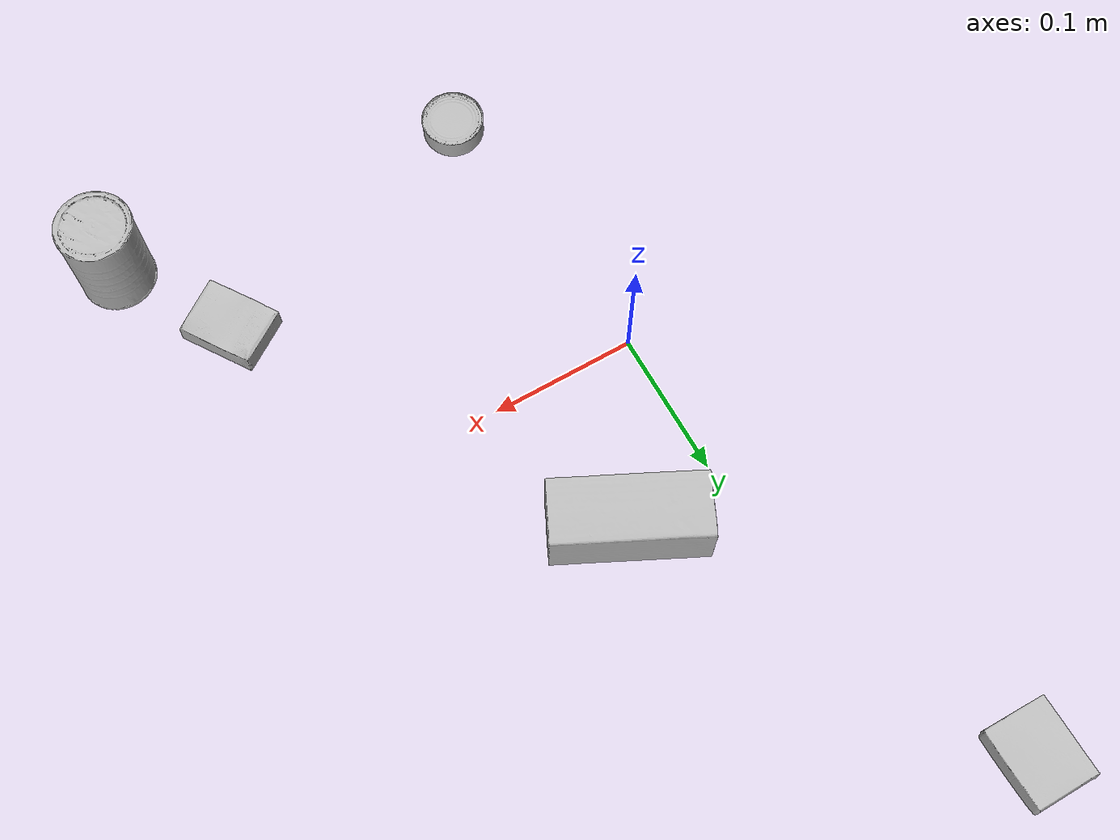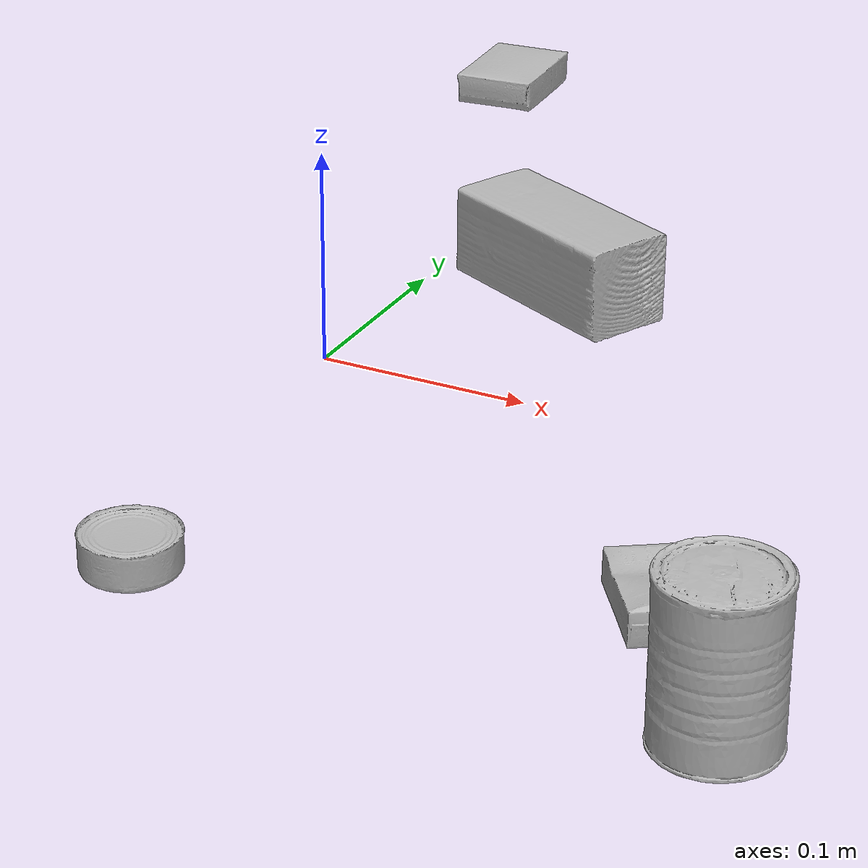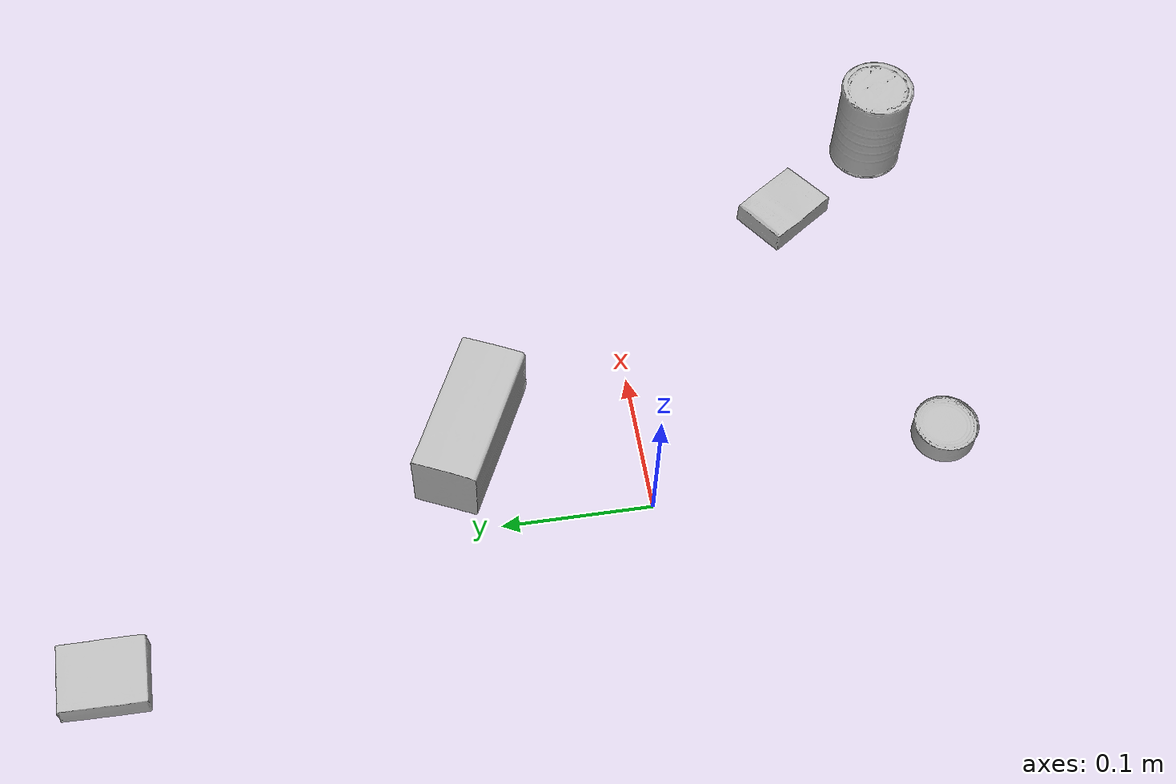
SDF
<sdf version="1.4">
  <world name="default">
    <light name="light1" type="point">
      <pose>0 0 1 0 0 0</pose>
      <diffuse>3 3 3 1</diffuse>
      <specular>3 3 3 1</specular>
    </light>
    <light name="light2" type="point">
      <pose>0 0.5 2 0 0 0</pose>
      <diffuse>1 1 1 1</diffuse>
      <specular>1 1 1 1</specular>
    </light>
    <light name="light3" type="point">
      <pose>0 0.5 2 0 0 0</pose>
      <diffuse>3 3 3 1</diffuse>
      <specular>3 3 3 1</specular>
    </light>
    <scene>
      <ambient>0.7 0.7 0.7</ambient>
    </scene>
    <model name="box1">
      <link name="link_box1">
        <collision name="default">
          <geometry>
            <mesh>
              <uri>model://pudding_box/collision_meshes/collision.obj</uri>
              <scale>0.5 0.5 0.5</scale>
            </mesh>
          </geometry>
          <surface>
            <friction>
              <ode>
                <mu>0.5</mu>
                <mu2>0.5</mu2>
              </ode>
            </friction>
          <contact>
        <ode>
            <max_vel>0</max_vel>
            <min_depth>0.0001</min_depth>
            <kp>1e8</kp>
        </ode>
    </contact></surface>
        </collision>
        <visual name="default">
          <geometry>
            <mesh>
              <uri>model://pudding_box/visual_meshes/visual.dae</uri>
              <scale>0.5 0.5 0.5</scale>
            </mesh>
          </geometry>
        </visual>
        <inertial>
          <mass>0.03999795392155647</mass>
          <pose>0.00024474109522998333 0.0004033942532259971 -0.0002594413817860186 0.005213101299265121 -0.006603799659933957 0.020079830747700592</pose>
          <inertia>
            <ixx>1.1303907e-05</ixx>
            <iyy>7.605349e-06</iyy>
            <izz>1.6693173e-05</izz>
            <ixy>0</ixy>
            <ixz>0</ixz>
            <iyz>0</iyz>
          </inertia>
        </inertial>
      </link>
      <pose>-0.07292571663856506 0.35434409976005554 0.009862901642918587 0.022348507562722414 -0.011391739138173743 0.005922514631414689</pose>
    </model>
    <model name="box2">
      <link name="link_box2">
        <collision name="default">
          <geometry>
            <mesh>
              <uri>model://cracker_box/collision_meshes/collision.obj</uri>
              <scale>0.25 0.25 0.25</scale>
            </mesh>
          </geometry>
          <surface>
            <friction>
              <ode>
                <mu>0.5</mu>
                <mu2>0.5</mu2>
              </ode>
            </friction>
          <contact>
        <ode>
            <max_vel>0</max_vel>
            <min_depth>0.0001</min_depth>
            <kp>1e8</kp>
        </ode>
    </contact></surface>
        </collision>
        <visual name="default">
          <geometry>
            <mesh>
              <uri>model://cracker_box/visual_meshes/visual.dae</uri>
              <scale>0.25 0.25 0.25</scale>
            </mesh>
          </geometry>
        </visual>
        <inertial>
          <mass>0.046595875173807144</mass>
          <pose>0.00023660322767682374 6.358561950037256e-05 -0.0004257383698131889 -0.00031620768958073674 -0.011106491463008503 0.002546795235494827</pose>
          <inertia>
            <ixx>7.407444e-06</ixx>
            <iyy>1.2231146e-05</iyy>
            <izz>1.7454966e-05</izz>
            <ixy>0</ixy>
            <ixz>0</ixz>
            <iyz>0</iyz>
          </inertia>
        </inertial>
      </link>
      <pose>0.22419090569019318 -0.13745616376399994 0.009096031077206135 -0.014050441678990439 -0.00501660701724021 -0.9780864991274903</pose>
    </model>
    <model name="box3">
      <link name="link_box3">
        <collision name="default">
          <geometry>
            <mesh>
              <uri>model://wood_block/collision_meshes/collision.obj</uri>
              <scale>0.5 0.5 0.5</scale>
            </mesh>
          </geometry>
          <surface>
            <friction>
              <ode>
                <mu>0.5</mu>
                <mu2>0.5</mu2>
              </ode>
            </friction>
          <contact>
        <ode>
            <max_vel>0</max_vel>
            <min_depth>0.0001</min_depth>
            <kp>1e8</kp>
        </ode>
    </contact></surface>
        </collision>
        <visual name="default">
          <geometry>
            <mesh>
              <uri>model://wood_block/visual_meshes/visual.dae</uri>
              <scale>0.5 0.5 0.5</scale>
            </mesh>
          </geometry>
        </visual>
        <inertial>
          <mass>0.28600308299064636</mass>
          <pose>-2.9066577553749084e-06 -0.000285404734313488 0.00013204291462898254 -0.052207212015849935 -0.005192697210617926 -0.006861377963206113</pose>
          <inertia>
            <ixx>9.567885e-05</ixx>
            <iyy>0.00030224954</iyy>
            <izz>0.00030111894</izz>
            <ixy>0</ixy>
            <ixz>0</ixz>
            <iyz>0</iyz>
          </inertia>
        </inertial>
      </link>
      <pose>0.06632333993911743 0.11105186492204666 0.02262926660478115 -0.005208530967651339 0.005718744099237192 -0.4536687541313396</pose>
    </model>
    <model name="can1">
      <link name="link_can1">
        <collision name="default">
          <geometry>
            <mesh>
              <uri>model://master_chef_can/collision_meshes/collision.obj</uri>
              <scale>0.5 0.5 0.5</scale>
            </mesh>
          </geometry>
          <surface>
            <friction>
              <ode>
                <mu>0.5</mu>
                <mu2>0.5</mu2>
              </ode>
            </friction>
          <contact>
        <ode>
            <max_vel>0</max_vel>
            <min_depth>0.0001</min_depth>
            <kp>1e8</kp>
        </ode>
    </contact></surface>
        </collision>
        <visual name="default">
          <geometry>
            <mesh>
              <uri>model://master_chef_can/visual_meshes/visual.dae</uri>
              <scale>0.5 0.5 0.5</scale>
            </mesh>
          </geometry>
        </visual>
        <inertial>
          <mass>0.116209015250206</mass>
          <pose>-4.661964703700505e-05 1.3926850783718692e-07 -5.0799026212189347e-05 -0.001799512795725948 0.0006479254888938259 -0.6102617322721998</pose>
          <inertia>
            <ixx>6.820682e-05</ixx>
            <iyy>6.7704816e-05</iyy>
            <izz>3.768948e-05</izz>
            <ixy>0</ixy>
            <ixz>0</ixz>
            <iyz>0</iyz>
          </inertia>
        </inertial>
      </link>
      <pose>0.27376922965049744 -0.2116093933582306 0.03530198708176613 -1.4701022825791648e-06 -1.3394197327134112e-06 -0.5550162497272273</pose>
    </model>
    <model name="can2">
      <link name="link_can2">
        <collision name="default">
          <geometry>
            <mesh>
              <uri>model://tuna_fish_can/collision_meshes/collision.obj</uri>
              <scale>0.5 0.5 0.5</scale>
            </mesh>
          </geometry>
          <surface>
            <friction>
              <ode>
                <mu>0.5</mu>
                <mu2>0.5</mu2>
              </ode>
            </friction>
          <contact>
        <ode>
            <max_vel>0</max_vel>
            <min_depth>0.0001</min_depth>
            <kp>1e8</kp>
        </ode>
    </contact></surface>
        </collision>
        <visual name="default">
          <geometry>
            <mesh>
              <uri>model://tuna_fish_can/visual_meshes/visual.dae</uri>
              <scale>0.5 0.5 0.5</scale>
            </mesh>
          </geometry>
        </visual>
        <inertial>
          <mass>0.017585277557373047</mass>
          <pose>-2.03625786525663e-05 -7.2565176196803804e-06 -0.000526902440469712 -0.0017944765250671837 0.00017163661440384507 0.24054644931605637</pose>
          <inertia>
            <ixx>2.3775558e-06</ixx>
            <iyy>2.3676464e-06</iyy>
            <izz>4.0683376e-06</izz>
            <ixy>0</ixy>
            <ixz>0</ixz>
            <iyz>0</iyz>
          </inertia>
        </inertial>
      </link>
      <pose>0.023859186097979546 -0.20094995200634003 0.008520002476871014 1.2314057091248335e-08 -1.3686356751486867e-08 0.6008075444159223</pose>
    </model>
  <physics type="ode">
      <max_contacts>50</max_contacts>
      <ode>
        <solver>
          <type>quick</type>
          <iters>75</iters>
        </solver>
        <constraints>
          <contact_max_correcting_vel>0</contact_max_correcting_vel>
          <contact_surface_layer>0</contact_surface_layer>
        </constraints>
      </ode>
    </physics></world>
</sdf>
